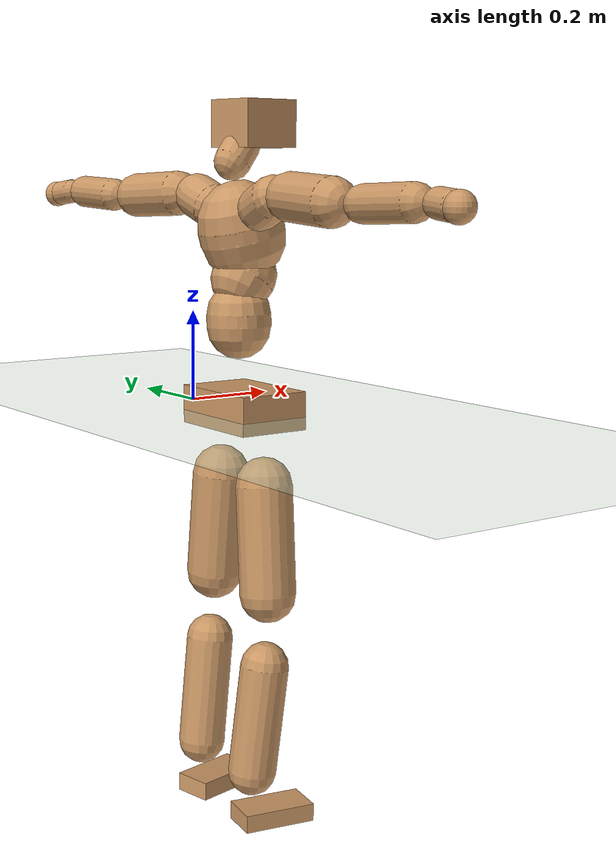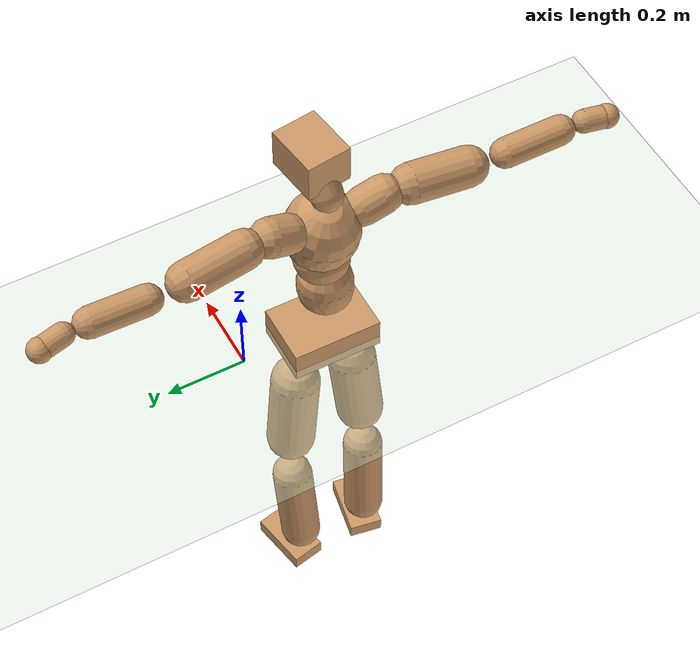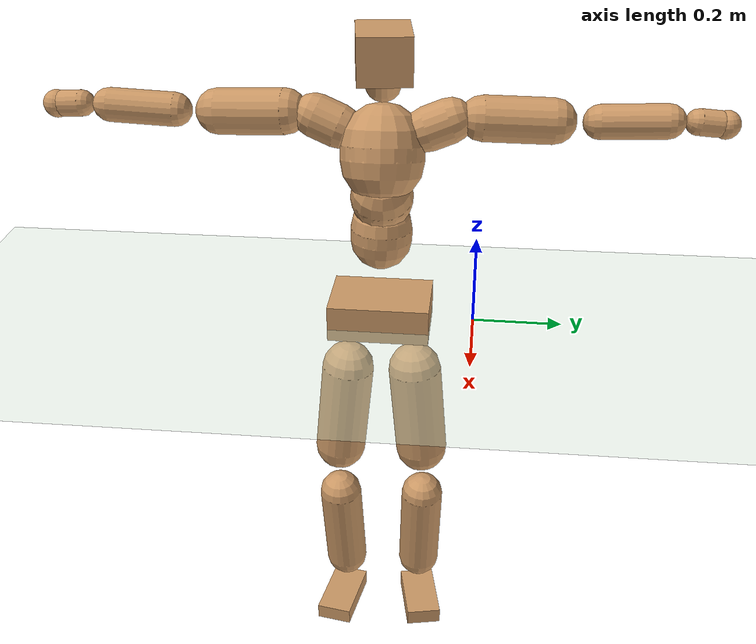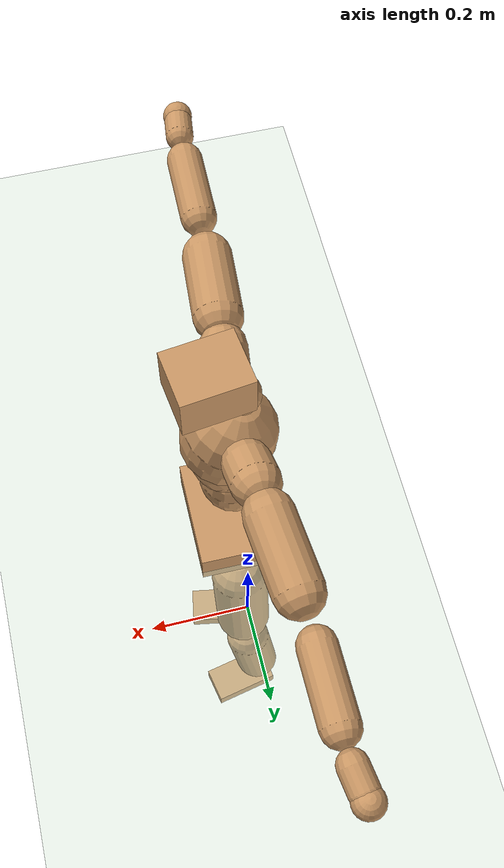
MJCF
<mujoco model="humanoid">
  <compiler coordinate="local" angle="radian"/>
  <default>
    <joint damping="0.0" armature="0.01" stiffness="0.0" limited="true"/>
    <geom conaffinity="1" condim="3" contype="7" margin="0.001" rgba="0.8 0.6 .4 1"/>
  </default>
  <asset>
    <texture type="skybox" builtin="gradient" rgb1=".4 .5 .6" rgb2="0 0 0" width="100" height="100"/>
    <texture builtin="flat" height="1278" mark="cross" markrgb="1 1 1" name="texgeom" random="0.01" rgb1="0.8 0.6 0.4" rgb2="0.8 0.6 0.4" type="cube" width="127"/>
    <texture builtin="checker" height="100" name="texplane" rgb1="0 0 0" rgb2="0.8 0.8 0.8" type="2d" width="100"/>
    <material name="MatPlane" reflectance="0.5" shininess="1" specular="1" texrepeat="60 60" texture="texplane"/>
    <material name="geom" texture="texgeom" texuniform="true"/>
  </asset>
  <worldbody>
    <light cutoff="100" diffuse="1 1 1" dir="-0 0 -1.3" directional="true" exponent="1" pos="0 0 1.3" specular=".1 .1 .1"/>
    <geom conaffinity="1" condim="3" name="floor" pos="0 0 0" rgba="0.8 0.9 0.8 1" size="100 100 .2" type="plane" material="MatPlane"/>
    <body name="Pelvis" pos="-0.0008 -0.2093 0.0247">
      <freejoint name="Pelvis"/>
      <geom type="box" contype="1" conaffinity="1" density="500" pos="-0.0061 0.0000 -0.0132" size="0.08 0.1134 0.041" quat="1.0000 0.0000 0.0000 -0.0023" name="Pelvis"/>
      <body name="L_Hip" pos="-0.0103 0.0729 -0.0932">
        <joint name="L_Hip_x" type="hinge" pos="0 0 0" axis="1 0 0" stiffness="800" damping="80" armature="0.02" range="-180.0000 180.0000"/>
        <joint name="L_Hip_y" type="hinge" pos="0 0 0" axis="0 1 0" stiffness="800" damping="80" armature="0.02" range="-180.0000 180.0000"/>
        <joint name="L_Hip_z" type="hinge" pos="0 0 0" axis="0 0 1" stiffness="800" damping="80" armature="0.02" range="-180.0000 180.0000"/>
        <geom type="capsule" contype="1" conaffinity="1" density="500" fromto="-0.0012 0.0065 -0.0762 -0.0050 0.0261 -0.3047" size="0.0618" name="L_Hip"/>
        <body name="L_Knee" pos="-0.0062 0.0327 -0.3809">
          <joint name="L_Knee_x" type="hinge" pos="0 0 0" axis="1 0 0" stiffness="800" damping="80" armature="0.02" range="-180.0000 180.0000"/>
          <joint name="L_Knee_y" type="hinge" pos="0 0 0" axis="0 1 0" stiffness="800" damping="80" armature="0.02" range="-180.0000 180.0000"/>
          <joint name="L_Knee_z" type="hinge" pos="0 0 0" axis="0 0 1" stiffness="800" damping="80" armature="0.02" range="-180.0000 180.0000"/>
          <geom type="capsule" contype="1" conaffinity="1" density="500" fromto="-0.0091 -0.0023 -0.0795 -0.0365 -0.0091 -0.3181" size="0.052" name="L_Knee"/>
          <body name="L_Ankle" pos="-0.0457 -0.0114 -0.3976">
            <joint name="L_Ankle_x" type="hinge" pos="0 0 0" axis="1 0 0" stiffness="800" damping="80" armature="0.02" range="-180.0000 180.0000"/>
            <joint name="L_Ankle_y" type="hinge" pos="0 0 0" axis="0 1 0" stiffness="800" damping="80" armature="0.02" range="-180.0000 180.0000"/>
            <joint name="L_Ankle_z" type="hinge" pos="0 0 0" axis="0 0 1" stiffness="800" damping="80" armature="0.02" range="-180.0000 180.0000"/>
            <geom type="box" contype="1" conaffinity="1" density="500" pos="0.0560 0.0113 -0.0272" size="0.0787 0.0429 0.0203" quat="0.9951 0.0000 0.0000 0.0990" name="L_Ankle"/>
            <body name="L_Toe" pos="0.112 0.0225 -0.0544">
              <joint name="L_Toe_x" type="hinge" pos="0 0 0" axis="1 0 0" stiffness="500" damping="50" armature="0.02" range="-180.0000 180.0000"/>
              <joint name="L_Toe_y" type="hinge" pos="0 0 0" axis="0 1 0" stiffness="500" damping="50" armature="0.02" range="-180.0000 180.0000"/>
              <joint name="L_Toe_z" type="hinge" pos="0 0 0" axis="0 0 1" stiffness="500" damping="50" armature="0.02" range="-180.0000 180.0000"/>
              <geom type="box" contype="1" conaffinity="1" density="500" pos="0.0000 0.0000 0.0266" size="0.0009 0.0022 0.001" quat="0.9944 0.0000 0.0000 0.1057" name="L_Toe"/>
            </body>
          </body>
        </body>
      </body>
      <body name="R_Hip" pos="-0.0065 -0.0707 -0.0929">
        <joint name="R_Hip_x" type="hinge" pos="0 0 0" axis="1 0 0" stiffness="800" damping="80" armature="0.02" range="-180.0000 180.0000"/>
        <joint name="R_Hip_y" type="hinge" pos="0 0 0" axis="0 1 0" stiffness="800" damping="80" armature="0.02" range="-180.0000 180.0000"/>
        <joint name="R_Hip_z" type="hinge" pos="0 0 0" axis="0 0 1" stiffness="800" damping="80" armature="0.02" range="-180.0000 180.0000"/>
        <geom type="capsule" contype="1" conaffinity="1" density="500" fromto="-0.0018 -0.0078 -0.0778 -0.0070 -0.0311 -0.3112" size="0.061" name="R_Hip"/>
        <body name="R_Knee" pos="-0.0088 -0.0388 -0.389">
          <joint name="R_Knee_x" type="hinge" pos="0 0 0" axis="1 0 0" stiffness="800" damping="80" armature="0.02" range="-180.0000 180.0000"/>
          <joint name="R_Knee_y" type="hinge" pos="0 0 0" axis="0 1 0" stiffness="800" damping="80" armature="0.02" range="-180.0000 180.0000"/>
          <joint name="R_Knee_z" type="hinge" pos="0 0 0" axis="0 0 1" stiffness="800" damping="80" armature="0.02" range="-180.0000 180.0000"/>
          <geom type="capsule" contype="1" conaffinity="1" density="500" fromto="-0.0085 0.0029 -0.0796 -0.0339 0.0118 -0.3184" size="0.0522" name="R_Knee"/>
          <body name="R_Ankle" pos="-0.0424 0.0147 -0.3979">
            <joint name="R_Ankle_x" type="hinge" pos="0 0 0" axis="1 0 0" stiffness="800" damping="80" armature="0.02" range="-180.0000 180.0000"/>
            <joint name="R_Ankle_y" type="hinge" pos="0 0 0" axis="0 1 0" stiffness="800" damping="80" armature="0.02" range="-180.0000 180.0000"/>
            <joint name="R_Ankle_z" type="hinge" pos="0 0 0" axis="0 0 1" stiffness="800" damping="80" armature="0.02" range="-180.0000 180.0000"/>
            <geom type="box" contype="1" conaffinity="1" density="500" pos="0.0575 -0.0103 -0.0244" size="0.0807 0.0435 0.0197" quat="0.9961 0.0000 0.0000 -0.0887" name="R_Ankle"/>
            <body name="R_Toe" pos="0.1151 -0.0206 -0.0488">
              <joint name="R_Toe_x" type="hinge" pos="0 0 0" axis="1 0 0" stiffness="500" damping="50" armature="0.02" range="-180.0000 180.0000"/>
              <joint name="R_Toe_y" type="hinge" pos="0 0 0" axis="0 1 0" stiffness="500" damping="50" armature="0.02" range="-180.0000 180.0000"/>
              <joint name="R_Toe_z" type="hinge" pos="0 0 0" axis="0 0 1" stiffness="500" damping="50" armature="0.02" range="-180.0000 180.0000"/>
              <geom type="box" contype="1" conaffinity="1" density="500" pos="0.0000 0.0000 0.0254" size="0.0008 0.0022 0.001" quat="0.9969 0.0000 0.0000 -0.0789" name="R_Toe"/>
            </body>
          </body>
        </body>
      </body>
      <body name="Torso" pos="-0.02 -0.002 0.1066">
        <joint name="Torso_x" type="hinge" pos="0 0 0" axis="1 0 0" stiffness="1000" damping="100" armature="0.02" range="-180.0000 180.0000"/>
        <joint name="Torso_y" type="hinge" pos="0 0 0" axis="0 1 0" stiffness="1000" damping="100" armature="0.02" range="-180.0000 180.0000"/>
        <joint name="Torso_z" type="hinge" pos="0 0 0" axis="0 0 1" stiffness="1000" damping="100" armature="0.02" range="-180.0000 180.0000"/>
        <geom type="capsule" contype="1" conaffinity="1" density="500" fromto="-0.0001 0.0020 0.0801 -0.0000 0.0013 0.0534" size="0.0683" name="Torso"/>
        <body name="Spine" pos="-0.0001 0.0033 0.1335">
          <joint name="Spine_x" type="hinge" pos="0 0 0" axis="1 0 0" stiffness="1000" damping="100" armature="0.02" range="-180.0000 180.0000"/>
          <joint name="Spine_y" type="hinge" pos="0 0 0" axis="0 1 0" stiffness="1000" damping="100" armature="0.02" range="-180.0000 180.0000"/>
          <joint name="Spine_z" type="hinge" pos="0 0 0" axis="0 0 1" stiffness="1000" damping="100" armature="0.02" range="-180.0000 180.0000"/>
          <geom type="capsule" contype="1" conaffinity="1" density="500" fromto="0.0172 0.0012 0.0289 0.0114 0.0008 0.0193" size="0.0681" name="Spine"/>
          <body name="Chest" pos="0.0286 0.002 0.0481">
            <joint name="Chest_x" type="hinge" pos="0 0 0" axis="1 0 0" stiffness="1000" damping="100" armature="0.02" range="-180.0000 180.0000"/>
            <joint name="Chest_y" type="hinge" pos="0 0 0" axis="0 1 0" stiffness="1000" damping="100" armature="0.02" range="-180.0000 180.0000"/>
            <joint name="Chest_z" type="hinge" pos="0 0 0" axis="0 0 1" stiffness="1000" damping="100" armature="0.02" range="-180.0000 180.0000"/>
            <geom type="capsule" contype="1" conaffinity="1" density="500" fromto="-0.0244 -0.0006 0.0860 -0.0163 -0.0004 0.0573" size="0.0905" name="Chest"/>
            <body name="Neck" pos="-0.0525 -0.0018 0.2011">
              <joint name="Neck_x" type="hinge" pos="0 0 0" axis="1 0 0" stiffness="500" damping="50" armature="0.02" range="-180.0000 180.0000"/>
              <joint name="Neck_y" type="hinge" pos="0 0 0" axis="0 1 0" stiffness="500" damping="50" armature="0.02" range="-180.0000 180.0000"/>
              <joint name="Neck_z" type="hinge" pos="0 0 0" axis="0 0 1" stiffness="500" damping="50" armature="0.02" range="-180.0000 180.0000"/>
              <geom type="capsule" contype="1" conaffinity="1" density="500" fromto="0.0088 0.0008 0.0116 0.0350 0.0033 0.0464" size="0.0389" name="Neck"/>
              <body name="Head" pos="0.0438 0.0041 0.0579">
                <joint name="Head_x" type="hinge" pos="0 0 0" axis="1 0 0" stiffness="500" damping="50" armature="0.02" range="-180.0000 180.0000"/>
                <joint name="Head_y" type="hinge" pos="0 0 0" axis="0 1 0" stiffness="500" damping="50" armature="0.02" range="-180.0000 180.0000"/>
                <joint name="Head_z" type="hinge" pos="0 0 0" axis="0 0 1" stiffness="500" damping="50" armature="0.02" range="-180.0000 180.0000"/>
                <geom type="box" contype="1" conaffinity="1" density="500" pos="0.0229 0.0031 0.0300" size="0.0681 0.0557 0.0486" quat="0.9978 0.0000 0.0000 0.0662" name="Head"/>
              </body>
            </body>
            <body name="L_Thorax" pos="-0.0321 0.0753 0.1154">
              <joint name="L_Thorax_x" type="hinge" pos="0 0 0" axis="1 0 0" stiffness="500" damping="50" armature="0.02" range="-180.0000 180.0000"/>
              <joint name="L_Thorax_y" type="hinge" pos="0 0 0" axis="0 1 0" stiffness="500" damping="50" armature="0.02" range="-180.0000 180.0000"/>
              <joint name="L_Thorax_z" type="hinge" pos="0 0 0" axis="0 0 1" stiffness="500" damping="50" armature="0.02" range="-180.0000 180.0000"/>
              <geom type="capsule" contype="1" conaffinity="1" density="500" fromto="-0.0014 0.0162 0.0064 -0.0057 0.0646 0.0255" size="0.0476" name="L_Thorax"/>
              <body name="L_Shoulder" pos="-0.0071 0.0808 0.0319">
                <joint name="L_Shoulder_x" type="hinge" pos="0 0 0" axis="1 0 0" stiffness="500" damping="50" armature="0.02" range="-720.0000 720.0000"/>
                <joint name="L_Shoulder_y" type="hinge" pos="0 0 0" axis="0 1 0" stiffness="500" damping="50" armature="0.02" range="-720.0000 720.0000"/>
                <joint name="L_Shoulder_z" type="hinge" pos="0 0 0" axis="0 0 1" stiffness="500" damping="50" armature="0.02" range="-720.0000 720.0000"/>
                <geom type="capsule" contype="1" conaffinity="1" density="500" fromto="-0.0052 0.0492 -0.0021 -0.0207 0.1967 -0.0085" size="0.048" name="L_Shoulder"/>
                <body name="L_Elbow" pos="-0.0259 0.2459 -0.0106">
                  <joint name="L_Elbow_x" type="hinge" pos="0 0 0" axis="1 0 0" stiffness="500" damping="50" armature="0.02" range="-720.0000 720.0000"/>
                  <joint name="L_Elbow_y" type="hinge" pos="0 0 0" axis="0 1 0" stiffness="500" damping="50" armature="0.02" range="-720.0000 720.0000"/>
                  <joint name="L_Elbow_z" type="hinge" pos="0 0 0" axis="0 0 1" stiffness="500" damping="50" armature="0.02" range="-720.0000 720.0000"/>
                  <geom type="capsule" contype="1" conaffinity="1" density="500" fromto="-0.0001 0.0462 0.0018 -0.0006 0.1847 0.0073" size="0.0364" name="L_Elbow"/>
                  <body name="L_Wrist" pos="-0.0007 0.2309 0.0091">
                    <joint name="L_Wrist_x" type="hinge" pos="0 0 0" axis="1 0 0" stiffness="300" damping="30" armature="0.02" range="-180.0000 180.0000"/>
                    <joint name="L_Wrist_y" type="hinge" pos="0 0 0" axis="0 1 0" stiffness="300" damping="30" armature="0.02" range="-180.0000 180.0000"/>
                    <joint name="L_Wrist_z" type="hinge" pos="0 0 0" axis="0 0 1" stiffness="300" damping="30" armature="0.02" range="-180.0000 180.0000"/>
                    <geom type="capsule" contype="1" conaffinity="1" density="500" fromto="-0.0025 0.0147 -0.0018 -0.0098 0.0586 -0.0072" size="0.0278" name="L_Wrist"/>
                    <body name="L_Hand" pos="-0.0123 0.0733 -0.009">
                      <joint name="L_Hand_x" type="hinge" pos="0 0 0" axis="1 0 0" stiffness="300" damping="30" armature="0.02" range="-180.0000 180.0000"/>
                      <joint name="L_Hand_y" type="hinge" pos="0 0 0" axis="0 1 0" stiffness="300" damping="30" armature="0.02" range="-180.0000 180.0000"/>
                      <joint name="L_Hand_z" type="hinge" pos="0 0 0" axis="0 0 1" stiffness="300" damping="30" armature="0.02" range="-180.0000 180.0000"/>
                      <geom type="sphere" contype="1" conaffinity="1" density="500" size="0.0297" pos="0.0000 0.0000 0.0000" name="L_Hand"/>
                    </body>
                  </body>
                </body>
              </body>
            </body>
            <body name="R_Thorax" pos="-0.0373 -0.0767 0.1134">
              <joint name="R_Thorax_x" type="hinge" pos="0 0 0" axis="1 0 0" stiffness="500" damping="50" armature="0.02" range="-180.0000 180.0000"/>
              <joint name="R_Thorax_y" type="hinge" pos="0 0 0" axis="0 1 0" stiffness="500" damping="50" armature="0.02" range="-180.0000 180.0000"/>
              <joint name="R_Thorax_z" type="hinge" pos="0 0 0" axis="0 0 1" stiffness="500" damping="50" armature="0.02" range="-180.0000 180.0000"/>
              <geom type="capsule" contype="1" conaffinity="1" density="500" fromto="-0.0019 -0.0171 0.0068 -0.0075 -0.0682 0.0271" size="0.0466" name="R_Thorax"/>
              <body name="R_Shoulder" pos="-0.0093 -0.0853 0.0339">
                <joint name="R_Shoulder_x" type="hinge" pos="0 0 0" axis="1 0 0" stiffness="500" damping="50" armature="0.02" range="-720.0000 720.0000"/>
                <joint name="R_Shoulder_y" type="hinge" pos="0 0 0" axis="0 1 0" stiffness="500" damping="50" armature="0.02" range="-720.0000 720.0000"/>
                <joint name="R_Shoulder_z" type="hinge" pos="0 0 0" axis="0 0 1" stiffness="500" damping="50" armature="0.02" range="-720.0000 720.0000"/>
                <geom type="capsule" contype="1" conaffinity="1" density="500" fromto="-0.0037 -0.0481 -0.0026 -0.0147 -0.1924 -0.0103" size="0.0493" name="R_Shoulder"/>
                <body name="R_Elbow" pos="-0.0183 -0.2405 -0.0129">
                  <joint name="R_Elbow_x" type="hinge" pos="0 0 0" axis="1 0 0" stiffness="500" damping="50" armature="0.02" range="-720.0000 720.0000"/>
                  <joint name="R_Elbow_y" type="hinge" pos="0 0 0" axis="0 1 0" stiffness="500" damping="50" armature="0.02" range="-720.0000 720.0000"/>
                  <joint name="R_Elbow_z" type="hinge" pos="0 0 0" axis="0 0 1" stiffness="500" damping="50" armature="0.02" range="-720.0000 720.0000"/>
                  <geom type="capsule" contype="1" conaffinity="1" density="500" fromto="-0.0010 -0.0480 0.0017 -0.0040 -0.1921 0.0069" size="0.0364" name="R_Elbow"/>
                  <body name="R_Wrist" pos="-0.005 -0.2402 0.0087">
                    <joint name="R_Wrist_x" type="hinge" pos="0 0 0" axis="1 0 0" stiffness="300" damping="30" armature="0.02" range="-180.0000 180.0000"/>
                    <joint name="R_Wrist_y" type="hinge" pos="0 0 0" axis="0 1 0" stiffness="300" damping="30" armature="0.02" range="-180.0000 180.0000"/>
                    <joint name="R_Wrist_z" type="hinge" pos="0 0 0" axis="0 0 1" stiffness="300" damping="30" armature="0.02" range="-180.0000 180.0000"/>
                    <geom type="capsule" contype="1" conaffinity="1" density="500" fromto="-0.0019 -0.0148 -0.0013 -0.0077 -0.0592 -0.0052" size="0.0284" name="R_Wrist"/>
                    <body name="R_Hand" pos="-0.0096 -0.074 -0.0066">
                      <joint name="R_Hand_x" type="hinge" pos="0 0 0" axis="1 0 0" stiffness="300" damping="30" armature="0.02" range="-180.0000 180.0000"/>
                      <joint name="R_Hand_y" type="hinge" pos="0 0 0" axis="0 1 0" stiffness="300" damping="30" armature="0.02" range="-180.0000 180.0000"/>
                      <joint name="R_Hand_z" type="hinge" pos="0 0 0" axis="0 0 1" stiffness="300" damping="30" armature="0.02" range="-180.0000 180.0000"/>
                      <geom type="sphere" contype="1" conaffinity="1" density="500" size="0.0298" pos="0.0000 0.0000 0.0000" name="R_Hand"/>
                    </body>
                  </body>
                </body>
              </body>
            </body>
          </body>
        </body>
      </body>
    </body>
  </worldbody>
  <actuator>
    <motor name="L_Hip_x" joint="L_Hip_x" gear="500"/>
    <motor name="L_Hip_y" joint="L_Hip_y" gear="500"/>
    <motor name="L_Hip_z" joint="L_Hip_z" gear="500"/>
    <motor name="L_Knee_x" joint="L_Knee_x" gear="500"/>
    <motor name="L_Knee_y" joint="L_Knee_y" gear="500"/>
    <motor name="L_Knee_z" joint="L_Knee_z" gear="500"/>
    <motor name="L_Ankle_x" joint="L_Ankle_x" gear="500"/>
    <motor name="L_Ankle_y" joint="L_Ankle_y" gear="500"/>
    <motor name="L_Ankle_z" joint="L_Ankle_z" gear="500"/>
    <motor name="L_Toe_x" joint="L_Toe_x" gear="500"/>
    <motor name="L_Toe_y" joint="L_Toe_y" gear="500"/>
    <motor name="L_Toe_z" joint="L_Toe_z" gear="500"/>
    <motor name="R_Hip_x" joint="R_Hip_x" gear="500"/>
    <motor name="R_Hip_y" joint="R_Hip_y" gear="500"/>
    <motor name="R_Hip_z" joint="R_Hip_z" gear="500"/>
    <motor name="R_Knee_x" joint="R_Knee_x" gear="500"/>
    <motor name="R_Knee_y" joint="R_Knee_y" gear="500"/>
    <motor name="R_Knee_z" joint="R_Knee_z" gear="500"/>
    <motor name="R_Ankle_x" joint="R_Ankle_x" gear="500"/>
    <motor name="R_Ankle_y" joint="R_Ankle_y" gear="500"/>
    <motor name="R_Ankle_z" joint="R_Ankle_z" gear="500"/>
    <motor name="R_Toe_x" joint="R_Toe_x" gear="500"/>
    <motor name="R_Toe_y" joint="R_Toe_y" gear="500"/>
    <motor name="R_Toe_z" joint="R_Toe_z" gear="500"/>
    <motor name="Torso_x" joint="Torso_x" gear="500"/>
    <motor name="Torso_y" joint="Torso_y" gear="500"/>
    <motor name="Torso_z" joint="Torso_z" gear="500"/>
    <motor name="Spine_x" joint="Spine_x" gear="500"/>
    <motor name="Spine_y" joint="Spine_y" gear="500"/>
    <motor name="Spine_z" joint="Spine_z" gear="500"/>
    <motor name="Chest_x" joint="Chest_x" gear="500"/>
    <motor name="Chest_y" joint="Chest_y" gear="500"/>
    <motor name="Chest_z" joint="Chest_z" gear="500"/>
    <motor name="Neck_x" joint="Neck_x" gear="500"/>
    <motor name="Neck_y" joint="Neck_y" gear="500"/>
    <motor name="Neck_z" joint="Neck_z" gear="500"/>
    <motor name="Head_x" joint="Head_x" gear="500"/>
    <motor name="Head_y" joint="Head_y" gear="500"/>
    <motor name="Head_z" joint="Head_z" gear="500"/>
    <motor name="L_Thorax_x" joint="L_Thorax_x" gear="500"/>
    <motor name="L_Thorax_y" joint="L_Thorax_y" gear="500"/>
    <motor name="L_Thorax_z" joint="L_Thorax_z" gear="500"/>
    <motor name="L_Shoulder_x" joint="L_Shoulder_x" gear="500"/>
    <motor name="L_Shoulder_y" joint="L_Shoulder_y" gear="500"/>
    <motor name="L_Shoulder_z" joint="L_Shoulder_z" gear="500"/>
    <motor name="L_Elbow_x" joint="L_Elbow_x" gear="500"/>
    <motor name="L_Elbow_y" joint="L_Elbow_y" gear="500"/>
    <motor name="L_Elbow_z" joint="L_Elbow_z" gear="500"/>
    <motor name="L_Wrist_x" joint="L_Wrist_x" gear="500"/>
    <motor name="L_Wrist_y" joint="L_Wrist_y" gear="500"/>
    <motor name="L_Wrist_z" joint="L_Wrist_z" gear="500"/>
    <motor name="L_Hand_x" joint="L_Hand_x" gear="500"/>
    <motor name="L_Hand_y" joint="L_Hand_y" gear="500"/>
    <motor name="L_Hand_z" joint="L_Hand_z" gear="500"/>
    <motor name="R_Thorax_x" joint="R_Thorax_x" gear="500"/>
    <motor name="R_Thorax_y" joint="R_Thorax_y" gear="500"/>
    <motor name="R_Thorax_z" joint="R_Thorax_z" gear="500"/>
    <motor name="R_Shoulder_x" joint="R_Shoulder_x" gear="500"/>
    <motor name="R_Shoulder_y" joint="R_Shoulder_y" gear="500"/>
    <motor name="R_Shoulder_z" joint="R_Shoulder_z" gear="500"/>
    <motor name="R_Elbow_x" joint="R_Elbow_x" gear="500"/>
    <motor name="R_Elbow_y" joint="R_Elbow_y" gear="500"/>
    <motor name="R_Elbow_z" joint="R_Elbow_z" gear="500"/>
    <motor name="R_Wrist_x" joint="R_Wrist_x" gear="500"/>
    <motor name="R_Wrist_y" joint="R_Wrist_y" gear="500"/>
    <motor name="R_Wrist_z" joint="R_Wrist_z" gear="500"/>
    <motor name="R_Hand_x" joint="R_Hand_x" gear="500"/>
    <motor name="R_Hand_y" joint="R_Hand_y" gear="500"/>
    <motor name="R_Hand_z" joint="R_Hand_z" gear="500"/>
  </actuator>
  <contact>
    <exclude body1="Torso" body2="Chest"/>
    <exclude body1="Head" body2="Chest"/>
    <exclude body1="R_Knee" body2="R_Toe"/>
    <exclude body1="R_Knee" body2="L_Ankle"/>
    <exclude body1="R_Knee" body2="L_Toe"/>
    <exclude body1="L_Knee" body2="L_Toe"/>
    <exclude body1="L_Knee" body2="R_Ankle"/>
    <exclude body1="L_Knee" body2="R_Toe"/>
    <exclude body1="L_Shoulder" body2="Chest"/>
    <exclude body1="R_Shoulder" body2="Chest"/>
  </contact>
  <sensor/>
  <size njmax="700" nconmax="700"/>
</mujoco>
